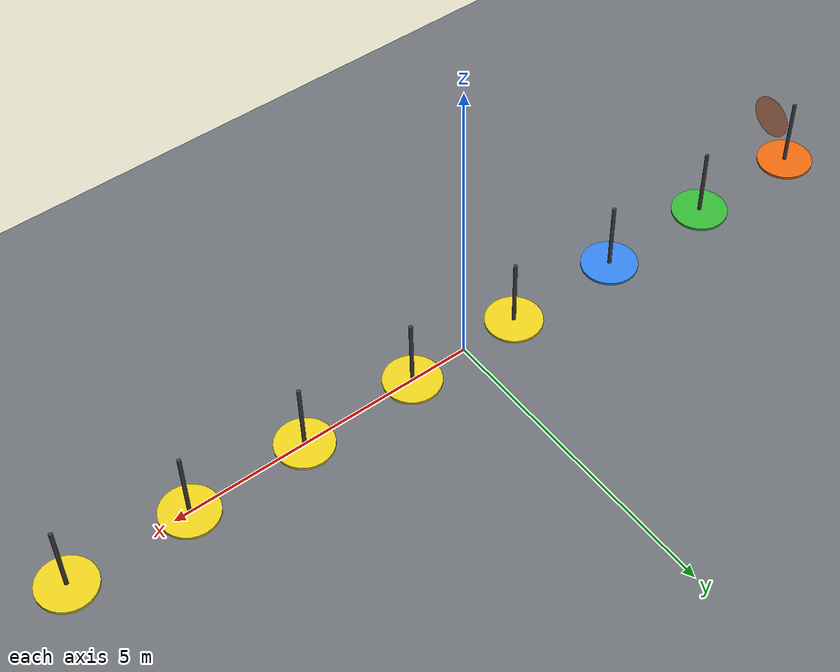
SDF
<sdf version="1.9">
 <world name="showcase">
  <physics name="1ms" type="ignore">
   <max_step_size>0.001</max_step_size>
   <real_time_factor>1.0</real_time_factor>
  </physics>
  <plugin filename="gz-sim-physics-system" name="gz::sim::systems::Physics"/>
  <plugin filename="gz-sim-user-commands-system" name="gz::sim::systems::UserCommands"/>
  <plugin filename="gz-sim-scene-broadcaster-system" name="gz::sim::systems::SceneBroadcaster"/>
  <plugin filename="gz-sim-sensors-system" name="gz::sim::systems::Sensors">
   <render_engine>ogre2</render_engine>
  </plugin>
  <gravity>0 0 -9.8</gravity>
  <scene>
   <ambient>0.75 0.75 0.78 1</ambient>
   <background>0.55 0.68 0.85 1</background>
   <shadows>false</shadows>
   <grid>false</grid>
  </scene>
  <light type="directional" name="sun">
   <cast_shadows>false</cast_shadows>
   <pose>0 0 12 0 0 0</pose>
   <diffuse>0.95 0.95 0.92 1</diffuse>
   <specular>0.3 0.3 0.3 1</specular>
   <direction>-0.4 0.3 -0.85</direction>
  </light>
  <light type="directional" name="fill">
   <cast_shadows>false</cast_shadows>
   <pose>0 0 8 0 0 0</pose>
   <diffuse>0.45 0.45 0.5 1</diffuse>
   <specular>0.1 0.1 0.1 1</specular>
   <direction>0.6 -0.5 -0.6</direction>
  </light>
  <model name="ground_plane">
   <static>true</static>
   <link name="link">
    <collision name="collision">
     <geometry><plane><normal>0 0 1</normal><size>100 100</size></plane></geometry>
    </collision>
    <visual name="visual">
     <geometry><plane><normal>0 0 1</normal><size>100 100</size></plane></geometry>
     <material><ambient>0.42 0.44 0.46 1</ambient><diffuse>0.42 0.44 0.46 1</diffuse></material>
    </visual>
   </link>
  </model>
  <include>
   <static>true</static>
   <uri>model://net_cone_display</uri>
   <name>net_cone_display</name>
   <pose>-6.37 0 1.245 0 0 0</pose>
  </include>
  <model name="avci_net_interceptor_pedestal">
   <static>true</static>
   <pose>-6.65 0 0 0 0 0</pose>
   <link name="link">
    <visual name="post">
     <pose>0 0 0.60 0 0 0</pose>
     <geometry><cylinder><radius>0.03</radius><length>1.20</length></cylinder></geometry>
     <material><ambient>0.25 0.25 0.25 1</ambient><diffuse>0.25 0.25 0.25 1</diffuse></material>
    </visual>
    <visual name="base">
     <pose>0 0 0.02 0 0 0</pose>
     <geometry><cylinder><radius>0.45</radius><length>0.04</length></cylinder></geometry>
     <material><ambient>0.9 0.4 0.05 1</ambient><diffuse>0.9 0.4 0.05 1</diffuse></material>
    </visual>
   </link>
  </model>
  <model name="cand_iris_pedestal">
   <static>true</static>
   <pose>-4.75 0 0 0 0 0</pose>
   <link name="link">
    <visual name="post">
     <pose>0 0 0.60 0 0 0</pose>
     <geometry><cylinder><radius>0.03</radius><length>1.20</length></cylinder></geometry>
     <material><ambient>0.25 0.25 0.25 1</ambient><diffuse>0.25 0.25 0.25 1</diffuse></material>
    </visual>
    <visual name="base">
     <pose>0 0 0.02 0 0 0</pose>
     <geometry><cylinder><radius>0.45</radius><length>0.04</length></cylinder></geometry>
     <material><ambient>0.2 0.7 0.2 1</ambient><diffuse>0.2 0.7 0.2 1</diffuse></material>
    </visual>
   </link>
  </model>
  <model name="cand_iq_camera_pedestal">
   <static>true</static>
   <pose>-2.85 0 0 0 0 0</pose>
   <link name="link">
    <visual name="post">
     <pose>0 0 0.60 0 0 0</pose>
     <geometry><cylinder><radius>0.03</radius><length>1.20</length></cylinder></geometry>
     <material><ambient>0.25 0.25 0.25 1</ambient><diffuse>0.25 0.25 0.25 1</diffuse></material>
    </visual>
    <visual name="base">
     <pose>0 0 0.02 0 0 0</pose>
     <geometry><cylinder><radius>0.45</radius><length>0.04</length></cylinder></geometry>
     <material><ambient>0.2 0.5 0.9 1</ambient><diffuse>0.2 0.5 0.9 1</diffuse></material>
    </visual>
   </link>
  </model>
  <model name="cand_mrs_x500_pedestal">
   <static>true</static>
   <pose>-0.95 0 0 0 0 0</pose>
   <link name="link">
    <visual name="post">
     <pose>0 0 0.60 0 0 0</pose>
     <geometry><cylinder><radius>0.03</radius><length>1.20</length></cylinder></geometry>
     <material><ambient>0.25 0.25 0.25 1</ambient><diffuse>0.25 0.25 0.25 1</diffuse></material>
    </visual>
    <visual name="base">
     <pose>0 0 0.02 0 0 0</pose>
     <geometry><cylinder><radius>0.45</radius><length>0.04</length></cylinder></geometry>
     <material><ambient>0.9 0.8 0.1 1</ambient><diffuse>0.9 0.8 0.1 1</diffuse></material>
    </visual>
   </link>
  </model>
  <model name="cand_mrs_t650_pedestal">
   <static>true</static>
   <pose>0.95 0 0 0 0 0</pose>
   <link name="link">
    <visual name="post">
     <pose>0 0 0.60 0 0 0</pose>
     <geometry><cylinder><radius>0.03</radius><length>1.20</length></cylinder></geometry>
     <material><ambient>0.25 0.25 0.25 1</ambient><diffuse>0.25 0.25 0.25 1</diffuse></material>
    </visual>
    <visual name="base">
     <pose>0 0 0.02 0 0 0</pose>
     <geometry><cylinder><radius>0.45</radius><length>0.04</length></cylinder></geometry>
     <material><ambient>0.9 0.8 0.1 1</ambient><diffuse>0.9 0.8 0.1 1</diffuse></material>
    </visual>
   </link>
  </model>
  <model name="cand_mrs_m690_pedestal">
   <static>true</static>
   <pose>2.85 0 0 0 0 0</pose>
   <link name="link">
    <visual name="post">
     <pose>0 0 0.60 0 0 0</pose>
     <geometry><cylinder><radius>0.03</radius><length>1.20</length></cylinder></geometry>
     <material><ambient>0.25 0.25 0.25 1</ambient><diffuse>0.25 0.25 0.25 1</diffuse></material>
    </visual>
    <visual name="base">
     <pose>0 0 0.02 0 0 0</pose>
     <geometry><cylinder><radius>0.45</radius><length>0.04</length></cylinder></geometry>
     <material><ambient>0.9 0.8 0.1 1</ambient><diffuse>0.9 0.8 0.1 1</diffuse></material>
    </visual>
   </link>
  </model>
  <model name="cand_mrs_f450_pedestal">
   <static>true</static>
   <pose>4.75 0 0 0 0 0</pose>
   <link name="link">
    <visual name="post">
     <pose>0 0 0.60 0 0 0</pose>
     <geometry><cylinder><radius>0.03</radius><length>1.20</length></cylinder></geometry>
     <material><ambient>0.25 0.25 0.25 1</ambient><diffuse>0.25 0.25 0.25 1</diffuse></material>
    </visual>
    <visual name="base">
     <pose>0 0 0.02 0 0 0</pose>
     <geometry><cylinder><radius>0.45</radius><length>0.04</length></cylinder></geometry>
     <material><ambient>0.9 0.8 0.1 1</ambient><diffuse>0.9 0.8 0.1 1</diffuse></material>
    </visual>
   </link>
  </model>
  <model name="cand_mrs_naki_pedestal">
   <static>true</static>
   <pose>6.65 0 0 0 0 0</pose>
   <link name="link">
    <visual name="post">
     <pose>0 0 0.60 0 0 0</pose>
     <geometry><cylinder><radius>0.03</radius><length>1.20</length></cylinder></geometry>
     <material><ambient>0.25 0.25 0.25 1</ambient><diffuse>0.25 0.25 0.25 1</diffuse></material>
    </visual>
    <visual name="base">
     <pose>0 0 0.02 0 0 0</pose>
     <geometry><cylinder><radius>0.45</radius><length>0.04</length></cylinder></geometry>
     <material><ambient>0.9 0.8 0.1 1</ambient><diffuse>0.9 0.8 0.1 1</diffuse></material>
    </visual>
   </link>
  </model>
  <model name="showcase_camera">
   <static>true</static>
   <pose>0 -11.5 1.75 0 0.035 1.5708</pose>
   <link name="link">
    <sensor name="cam" type="camera">
     <always_on>1</always_on>
     <update_rate>10</update_rate>
     <topic>/showcase/wide</topic>
     <camera>
      <horizontal_fov>1.25</horizontal_fov>
      <image><width>1800</width><height>620</height><format>R8G8B8</format></image>
      <clip><near>0.1</near><far>200</far></clip>
     </camera>
    </sensor>
   </link>
  </model>
  <model name="closeup_camera">
   <static>true</static>
   <pose>-6.45 -2.05 1.30 0 -0.01 1.5708</pose>
   <link name="link">
    <sensor name="cam" type="camera">
     <always_on>1</always_on>
     <update_rate>10</update_rate>
     <topic>/showcase/closeup</topic>
     <camera>
      <horizontal_fov>0.80</horizontal_fov>
      <image><width>1280</width><height>1000</height><format>R8G8B8</format></image>
      <clip><near>0.05</near><far>100</far></clip>
     </camera>
    </sensor>
   </link>
  </model>
 </world>
</sdf>

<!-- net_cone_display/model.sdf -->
<sdf version="1.9">
  <model name="net_cone_display">
    <static>true</static>

    <link name="net_link">
      <inertial>
        <mass>0.30</mass>
        <!-- Ince kabuk koni yaklasimi; tam dogru degil ama menzil/balistik
             icin yeterli. Agirlik merkezi agza dogru kayik. -->
        <pose>0.15 0 0 0 0 0</pose>
        <inertia>
          <ixx>0.0012</ixx>
          <ixy>0</ixy>
          <ixz>0</ixz>
          <iyy>0.0009</iyy>
          <iyz>0</iyz>
          <izz>0.0009</izz>
        </inertia>
      </inertial>

      <collision name="net_collision">
        <pose degrees="true">0.125 0 0 0 -90 0</pose>
        <geometry>
          <cone>
            <radius>0.35</radius>
            <length>0.25</length>
          </cone>
        </geometry>
        <surface>
          <contact>
            <ode>
              <!-- Ag yumusak: hedefi sekmeden yakalamali -->
              <max_vel>0.1</max_vel>
              <min_depth>0.005</min_depth>
            </ode>
          </contact>
          <friction>
            <ode>
              <mu>1.5</mu>
              <mu2>1.5</mu2>
            </ode>
          </friction>
        </surface>
      </collision>

      <visual name="net_visual">
        <pose degrees="true">0.125 0 0 0 -90 0</pose>
        <geometry>
          <cone>
            <radius>0.35</radius>
            <length>0.25</length>
          </cone>
        </geometry>
        <material>
          <ambient>0.9 0.35 0.05 0.55</ambient>
          <diffuse>0.9 0.35 0.05 0.55</diffuse>
          <specular>0.1 0.1 0.1 1</specular>
        </material>
        <transparency>0.45</transparency>
      </visual>

      <!-- Yakalama tespiti: NetCapturePlugin bu sensoru dinler -->
      <sensor name="net_contact" type="contact">
        <always_on>true</always_on>
        <!-- Fizik adimiyla ayni hiz: 20 m/s'de 200 Hz ornekleme (5 ms = 10 cm)
             30 cm'lik hedefte temasi kacirabiliyordu. -->
        <update_rate>1000</update_rate>
        <contact>
          <collision>net_collision</collision>
        </contact>
      </sensor>
    </link>

  </model>
</sdf>
